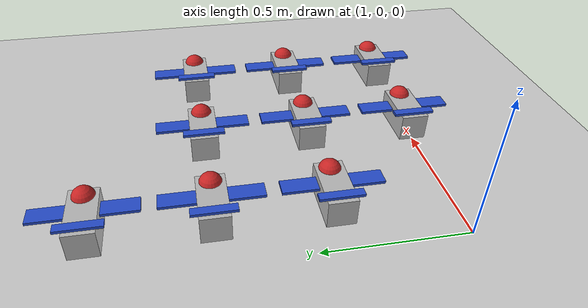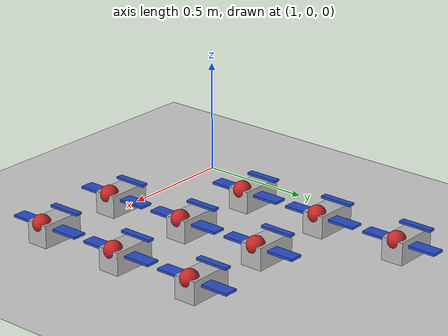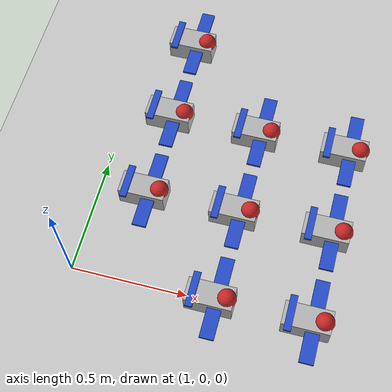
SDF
<sdf version="1.5">
 <world name="default">
  <model name="fixed_wing_4">
   <pose>1.6 0.0 0.05 0 0 0</pose>
   <link name="link">
    <kinematic>true</kinematic>
    <gravity>false</gravity>
    <collision name="collision"><geometry><box><size>0.2 .1 .1</size></box></geometry></collision>
    <visual name="visual"><geometry><box><size>0.2 .1 .1</size></box></geometry></visual>
    <visual name="visual_front">
     <pose>0.07 0 0.04 0 0 0</pose>
     <geometry><sphere><radius>.04</radius></sphere></geometry>
     <material><script><name>Gazebo/Red</name></script></material>
    </visual>
    <visual name="visual_wing1">
     <pose>0.03 0 0.02 0 0 0</pose>
     <geometry><box><size>.06 0.35 0.01</size></box></geometry>
     <material><script><name>Gazebo/Blue</name></script></material>
    </visual>
    <visual name="visual_wing2">
     <pose>-0.07 0 0.055 0 0 0</pose>
     <geometry><box><size>.03 0.15 0.01</size></box></geometry>
     <material><script><name>Gazebo/Blue</name></script></material>
    </visual>
   </link>
   <plugin name="swarm_controller_4" filename="libTeamControllerPlugin.so">
    <type>fixed_wing</type>
    <address>192.168.2.5</address>
    <num_messages>1</num_messages>
   </plugin>
  </model>
  <model name="fixed_wing_5">
   <pose>2.0 0.0 0.05 0 0 0</pose>
   <link name="link">
    <kinematic>true</kinematic>
    <gravity>false</gravity>
    <collision name="collision"><geometry><box><size>0.2 .1 .1</size></box></geometry></collision>
    <visual name="visual"><geometry><box><size>0.2 .1 .1</size></box></geometry></visual>
    <visual name="visual_front">
     <pose>0.07 0 0.04 0 0 0</pose>
     <geometry><sphere><radius>.04</radius></sphere></geometry>
     <material><script><name>Gazebo/Red</name></script></material>
    </visual>
    <visual name="visual_wing1">
     <pose>0.03 0 0.02 0 0 0</pose>
     <geometry><box><size>.06 0.35 0.01</size></box></geometry>
     <material><script><name>Gazebo/Blue</name></script></material>
    </visual>
    <visual name="visual_wing2">
     <pose>-0.07 0 0.055 0 0 0</pose>
     <geometry><box><size>.03 0.15 0.01</size></box></geometry>
     <material><script><name>Gazebo/Blue</name></script></material>
    </visual>
   </link>
   <plugin name="swarm_controller_5" filename="libTeamControllerPlugin.so">
    <type>fixed_wing</type>
    <address>192.168.2.6</address>
    <num_messages>1</num_messages>
   </plugin>
  </model>
  <model name="fixed_wing_9">
   <pose>1.2000000000000002 0.4 0.05 0 0 0</pose>
   <link name="link">
    <kinematic>true</kinematic>
    <gravity>false</gravity>
    <collision name="collision"><geometry><box><size>0.2 .1 .1</size></box></geometry></collision>
    <visual name="visual"><geometry><box><size>0.2 .1 .1</size></box></geometry></visual>
    <visual name="visual_front">
     <pose>0.07 0 0.04 0 0 0</pose>
     <geometry><sphere><radius>.04</radius></sphere></geometry>
     <material><script><name>Gazebo/Red</name></script></material>
    </visual>
    <visual name="visual_wing1">
     <pose>0.03 0 0.02 0 0 0</pose>
     <geometry><box><size>.06 0.35 0.01</size></box></geometry>
     <material><script><name>Gazebo/Blue</name></script></material>
    </visual>
    <visual name="visual_wing2">
     <pose>-0.07 0 0.055 0 0 0</pose>
     <geometry><box><size>.03 0.15 0.01</size></box></geometry>
     <material><script><name>Gazebo/Blue</name></script></material>
    </visual>
   </link>
   <plugin name="swarm_controller_9" filename="libTeamControllerPlugin.so">
    <type>fixed_wing</type>
    <address>192.168.2.10</address>
    <num_messages>1</num_messages>
   </plugin>
  </model>
  <model name="fixed_wing_10">
   <pose>1.6 0.4 0.05 0 0 0</pose>
   <link name="link">
    <kinematic>true</kinematic>
    <gravity>false</gravity>
    <collision name="collision"><geometry><box><size>0.2 .1 .1</size></box></geometry></collision>
    <visual name="visual"><geometry><box><size>0.2 .1 .1</size></box></geometry></visual>
    <visual name="visual_front">
     <pose>0.07 0 0.04 0 0 0</pose>
     <geometry><sphere><radius>.04</radius></sphere></geometry>
     <material><script><name>Gazebo/Red</name></script></material>
    </visual>
    <visual name="visual_wing1">
     <pose>0.03 0 0.02 0 0 0</pose>
     <geometry><box><size>.06 0.35 0.01</size></box></geometry>
     <material><script><name>Gazebo/Blue</name></script></material>
    </visual>
    <visual name="visual_wing2">
     <pose>-0.07 0 0.055 0 0 0</pose>
     <geometry><box><size>.03 0.15 0.01</size></box></geometry>
     <material><script><name>Gazebo/Blue</name></script></material>
    </visual>
   </link>
   <plugin name="swarm_controller_10" filename="libTeamControllerPlugin.so">
    <type>fixed_wing</type>
    <address>192.168.2.11</address>
    <num_messages>1</num_messages>
   </plugin>
  </model>
  <model name="fixed_wing_11">
   <pose>2.0 0.4 0.05 0 0 0</pose>
   <link name="link">
    <kinematic>true</kinematic>
    <gravity>false</gravity>
    <collision name="collision"><geometry><box><size>0.2 .1 .1</size></box></geometry></collision>
    <visual name="visual"><geometry><box><size>0.2 .1 .1</size></box></geometry></visual>
    <visual name="visual_front">
     <pose>0.07 0 0.04 0 0 0</pose>
     <geometry><sphere><radius>.04</radius></sphere></geometry>
     <material><script><name>Gazebo/Red</name></script></material>
    </visual>
    <visual name="visual_wing1">
     <pose>0.03 0 0.02 0 0 0</pose>
     <geometry><box><size>.06 0.35 0.01</size></box></geometry>
     <material><script><name>Gazebo/Blue</name></script></material>
    </visual>
    <visual name="visual_wing2">
     <pose>-0.07 0 0.055 0 0 0</pose>
     <geometry><box><size>.03 0.15 0.01</size></box></geometry>
     <material><script><name>Gazebo/Blue</name></script></material>
    </visual>
   </link>
   <plugin name="swarm_controller_11" filename="libTeamControllerPlugin.so">
    <type>fixed_wing</type>
    <address>192.168.2.12</address>
    <num_messages>1</num_messages>
   </plugin>
  </model>
  <model name="fixed_wing_15">
   <pose>1.2000000000000002 0.8 0.05 0 0 0</pose>
   <link name="link">
    <kinematic>true</kinematic>
    <gravity>false</gravity>
    <collision name="collision"><geometry><box><size>0.2 .1 .1</size></box></geometry></collision>
    <visual name="visual"><geometry><box><size>0.2 .1 .1</size></box></geometry></visual>
    <visual name="visual_front">
     <pose>0.07 0 0.04 0 0 0</pose>
     <geometry><sphere><radius>.04</radius></sphere></geometry>
     <material><script><name>Gazebo/Red</name></script></material>
    </visual>
    <visual name="visual_wing1">
     <pose>0.03 0 0.02 0 0 0</pose>
     <geometry><box><size>.06 0.35 0.01</size></box></geometry>
     <material><script><name>Gazebo/Blue</name></script></material>
    </visual>
    <visual name="visual_wing2">
     <pose>-0.07 0 0.055 0 0 0</pose>
     <geometry><box><size>.03 0.15 0.01</size></box></geometry>
     <material><script><name>Gazebo/Blue</name></script></material>
    </visual>
   </link>
   <plugin name="swarm_controller_15" filename="libTeamControllerPlugin.so">
    <type>fixed_wing</type>
    <address>192.168.2.16</address>
    <num_messages>1</num_messages>
   </plugin>
  </model>
  <model name="fixed_wing_16">
   <pose>1.6 0.8 0.05 0 0 0</pose>
   <link name="link">
    <kinematic>true</kinematic>
    <gravity>false</gravity>
    <collision name="collision"><geometry><box><size>0.2 .1 .1</size></box></geometry></collision>
    <visual name="visual"><geometry><box><size>0.2 .1 .1</size></box></geometry></visual>
    <visual name="visual_front">
     <pose>0.07 0 0.04 0 0 0</pose>
     <geometry><sphere><radius>.04</radius></sphere></geometry>
     <material><script><name>Gazebo/Red</name></script></material>
    </visual>
    <visual name="visual_wing1">
     <pose>0.03 0 0.02 0 0 0</pose>
     <geometry><box><size>.06 0.35 0.01</size></box></geometry>
     <material><script><name>Gazebo/Blue</name></script></material>
    </visual>
    <visual name="visual_wing2">
     <pose>-0.07 0 0.055 0 0 0</pose>
     <geometry><box><size>.03 0.15 0.01</size></box></geometry>
     <material><script><name>Gazebo/Blue</name></script></material>
    </visual>
   </link>
   <plugin name="swarm_controller_16" filename="libTeamControllerPlugin.so">
    <type>fixed_wing</type>
    <address>192.168.2.17</address>
    <num_messages>1</num_messages>
   </plugin>
  </model>
  <model name="fixed_wing_17">
   <pose>2.0 0.8 0.05 0 0 0</pose>
   <link name="link">
    <kinematic>true</kinematic>
    <gravity>false</gravity>
    <collision name="collision"><geometry><box><size>0.2 .1 .1</size></box></geometry></collision>
    <visual name="visual"><geometry><box><size>0.2 .1 .1</size></box></geometry></visual>
    <visual name="visual_front">
     <pose>0.07 0 0.04 0 0 0</pose>
     <geometry><sphere><radius>.04</radius></sphere></geometry>
     <material><script><name>Gazebo/Red</name></script></material>
    </visual>
    <visual name="visual_wing1">
     <pose>0.03 0 0.02 0 0 0</pose>
     <geometry><box><size>.06 0.35 0.01</size></box></geometry>
     <material><script><name>Gazebo/Blue</name></script></material>
    </visual>
    <visual name="visual_wing2">
     <pose>-0.07 0 0.055 0 0 0</pose>
     <geometry><box><size>.03 0.15 0.01</size></box></geometry>
     <material><script><name>Gazebo/Blue</name></script></material>
    </visual>
   </link>
   <plugin name="swarm_controller_17" filename="libTeamControllerPlugin.so">
    <type>fixed_wing</type>
    <address>192.168.2.18</address>
    <num_messages>1</num_messages>
   </plugin>
  </model>
  <model name="fixed_wing_21">
   <pose>1.2000000000000002 1.2000000000000002 0.05 0 0 0</pose>
   <link name="link">
    <kinematic>true</kinematic>
    <gravity>false</gravity>
    <collision name="collision"><geometry><box><size>0.2 .1 .1</size></box></geometry></collision>
    <visual name="visual"><geometry><box><size>0.2 .1 .1</size></box></geometry></visual>
    <visual name="visual_front">
     <pose>0.07 0 0.04 0 0 0</pose>
     <geometry><sphere><radius>.04</radius></sphere></geometry>
     <material><script><name>Gazebo/Red</name></script></material>
    </visual>
    <visual name="visual_wing1">
     <pose>0.03 0 0.02 0 0 0</pose>
     <geometry><box><size>.06 0.35 0.01</size></box></geometry>
     <material><script><name>Gazebo/Blue</name></script></material>
    </visual>
    <visual name="visual_wing2">
     <pose>-0.07 0 0.055 0 0 0</pose>
     <geometry><box><size>.03 0.15 0.01</size></box></geometry>
     <material><script><name>Gazebo/Blue</name></script></material>
    </visual>
   </link>
   <plugin name="swarm_controller_21" filename="libTeamControllerPlugin.so">
    <type>fixed_wing</type>
    <address>192.168.2.22</address>
    <num_messages>1</num_messages>
   </plugin>
  </model>
  <model name="ground_plane">
   <static>true</static>
   <link name="link">
    <collision name="collision">
     <geometry><plane><normal>0 0 1</normal><size>10000 10000</size></plane></geometry>
     <surface><friction><ode><mu>100</mu><mu2>50</mu2></ode></friction></surface>
    </collision>
    <visual name="visual">
     <cast_shadows>false</cast_shadows>
     <geometry><plane><normal>0 0 1</normal><size>10000 10000</size></plane></geometry>
     <material>
      <script><uri>file://media/materials/scripts/gazebo.material</uri><name>Gazebo/Grey</name></script>
     </material>
    </visual>
   </link>
  </model>
 </world>
</sdf>
